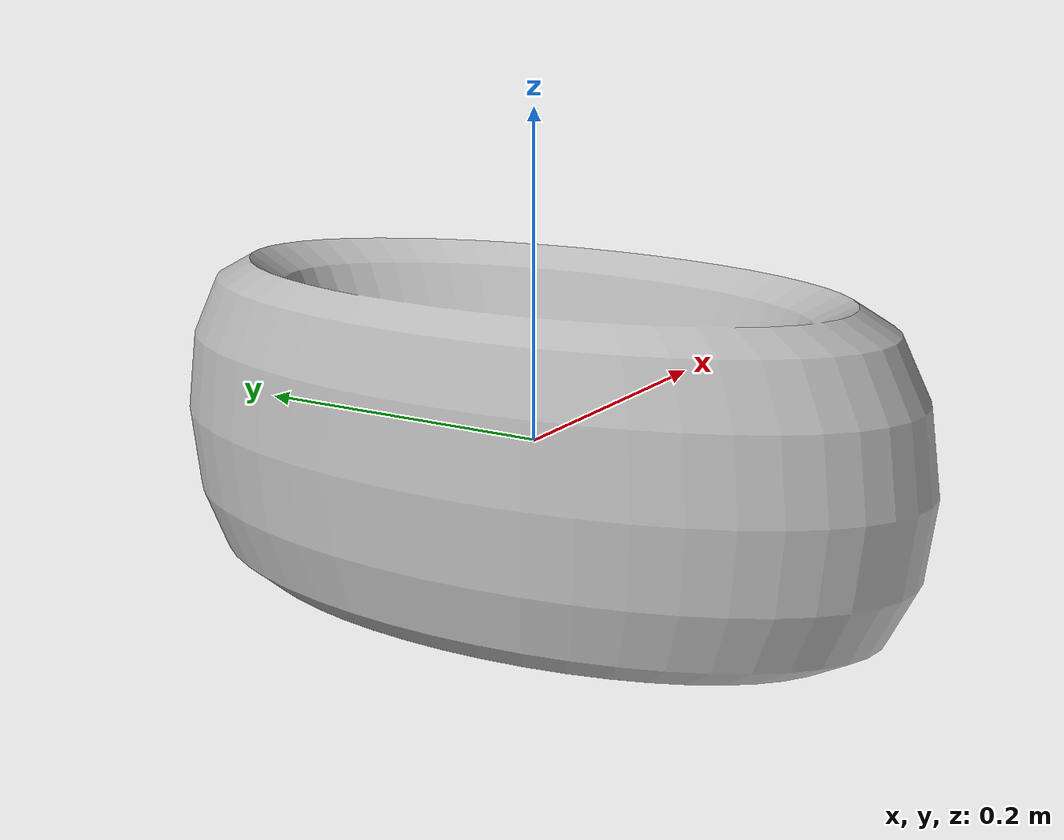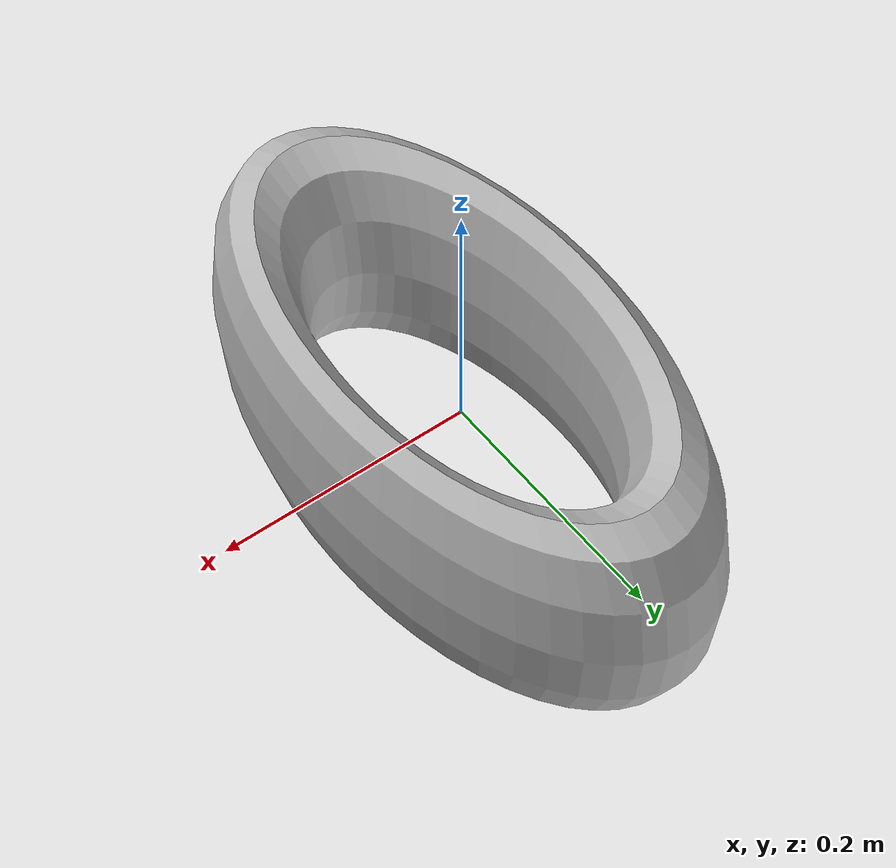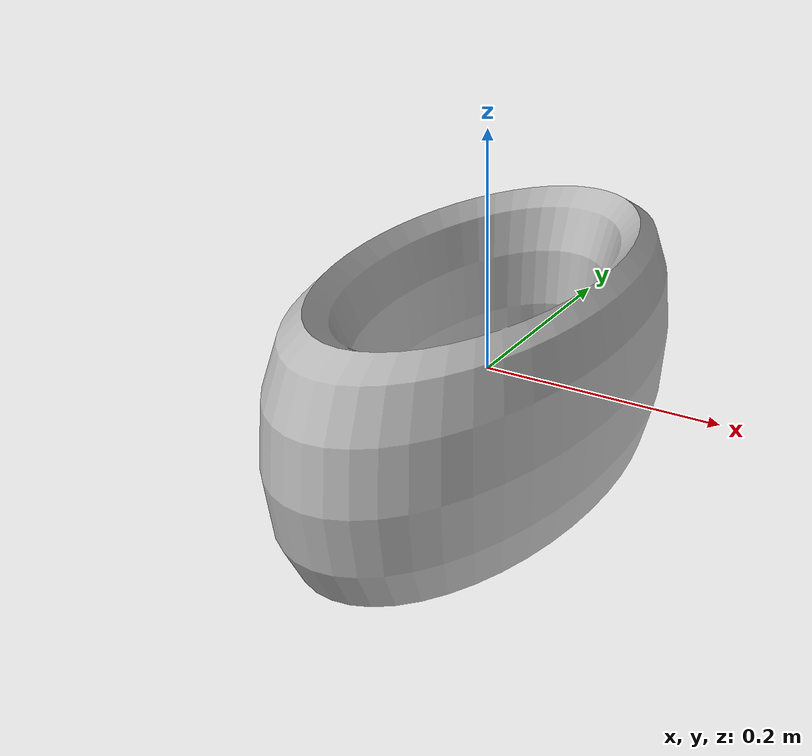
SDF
<?xml version='1.0' encoding='utf-8'?>
<sdf version="1.7">
  <model name="geometry_mesh_scaled">
    <link name="link">
      <visual name="link_visual">
        <geometry>
          <mesh>
            <uri>model://geometry_mesh_scaled/torus.stl</uri>
            <scale>0.1 0.2 0.4</scale>
          </mesh>
        </geometry>
      </visual>
      <collision name="link_collision">
        <geometry>
          <mesh>
            <uri>model://geometry_mesh_scaled/torus.stl</uri>
            <scale>0.1 0.2 0.4</scale>
          </mesh>
        </geometry>
      </collision>
      <inertial>
        <mass>1.23</mass>
        <inertia>
          <ixx>0.0205</ixx>
          <ixy>0</ixy>
          <ixz>0</ixz>
          <iyy>0.017425</iyy>
          <iyz>0</iyz>
          <izz>0.005125</izz>
        </inertia>
      </inertial>
    </link>
  </model>
</sdf>
